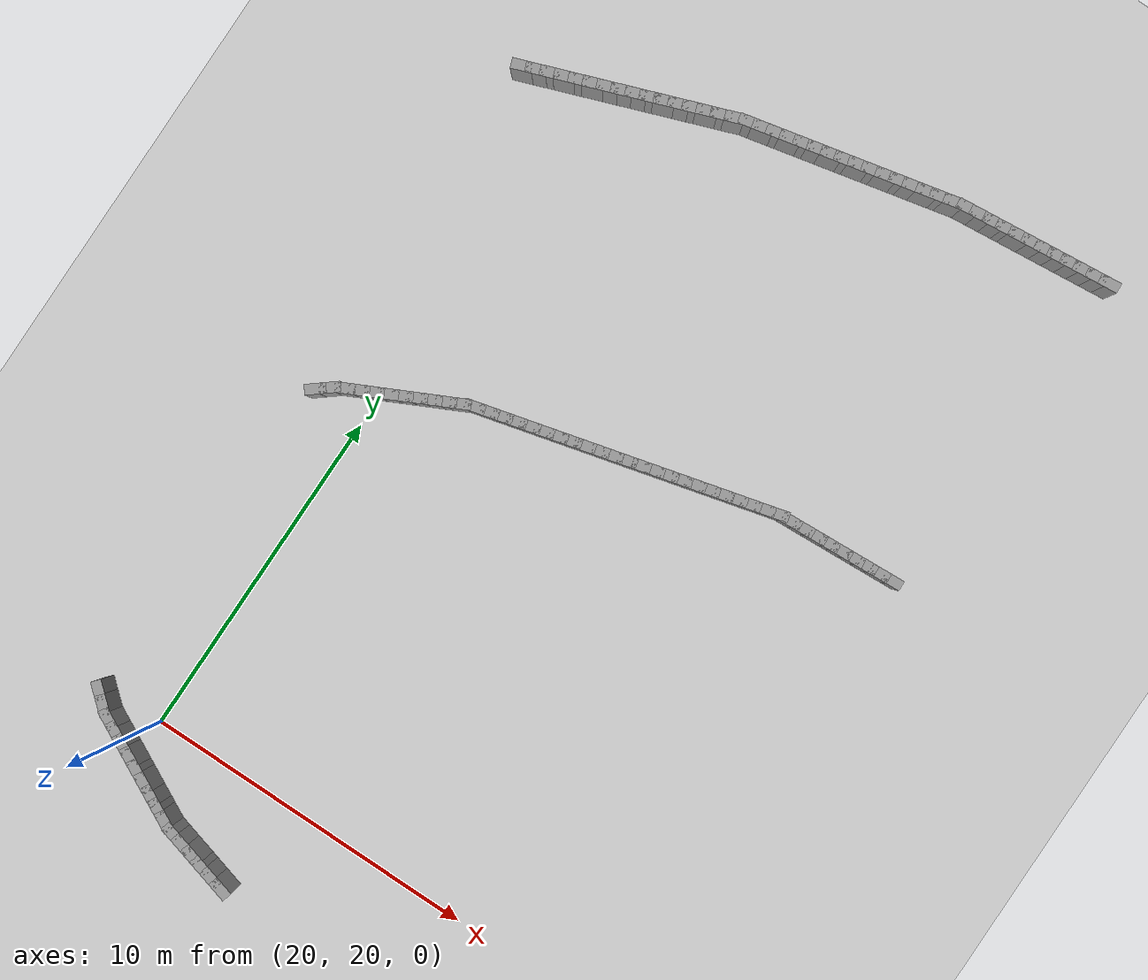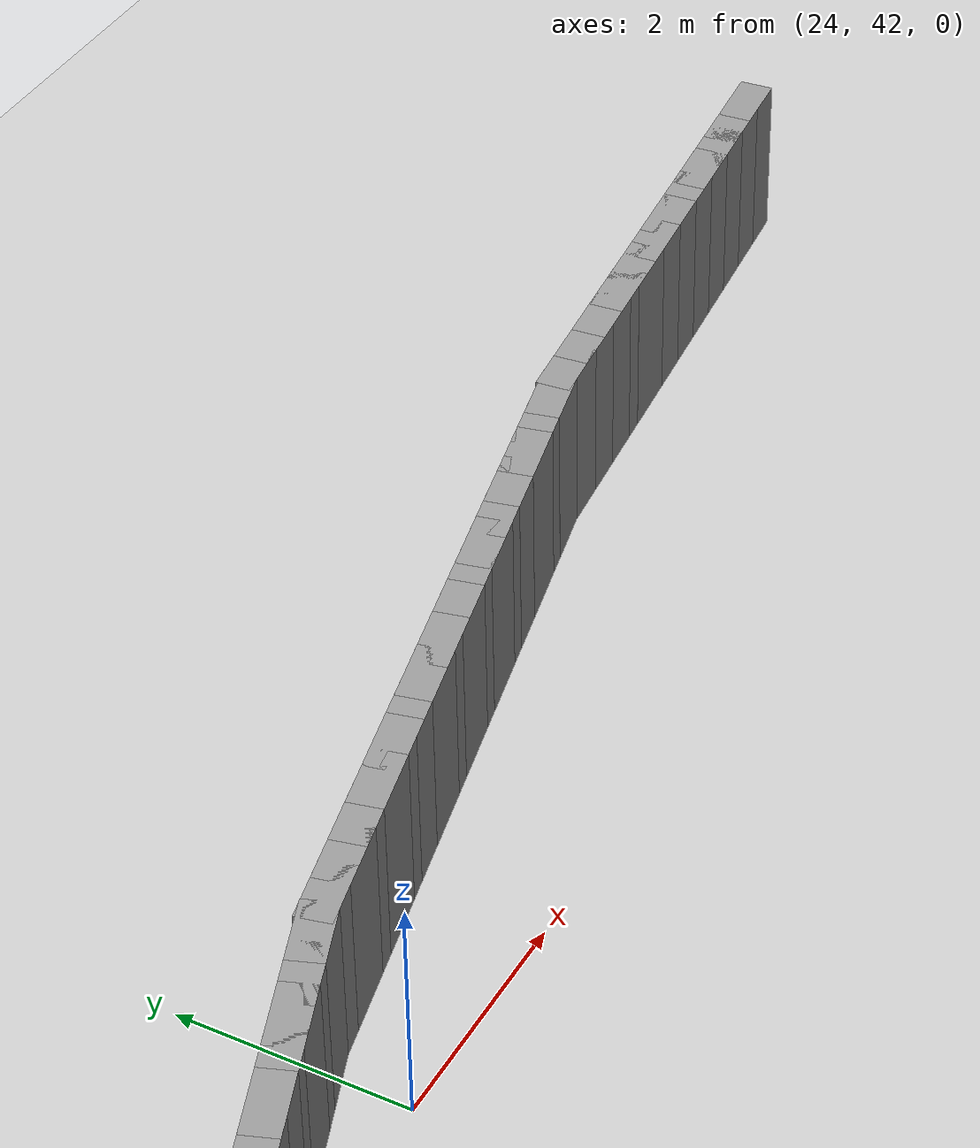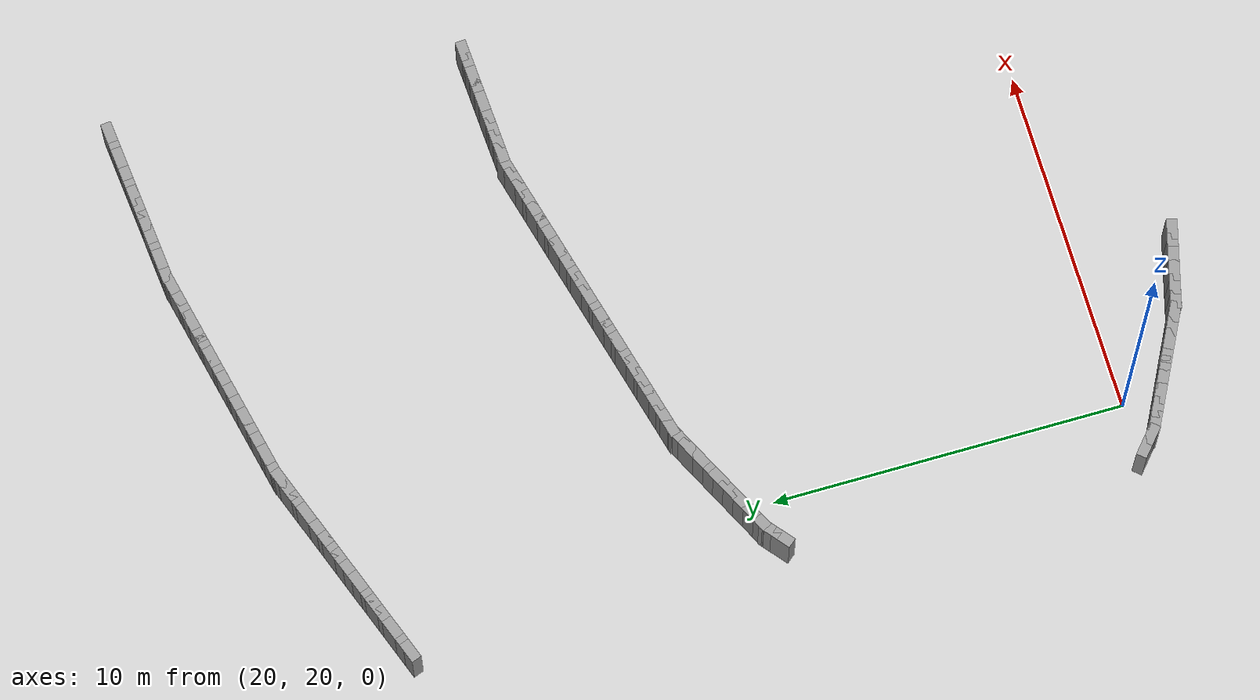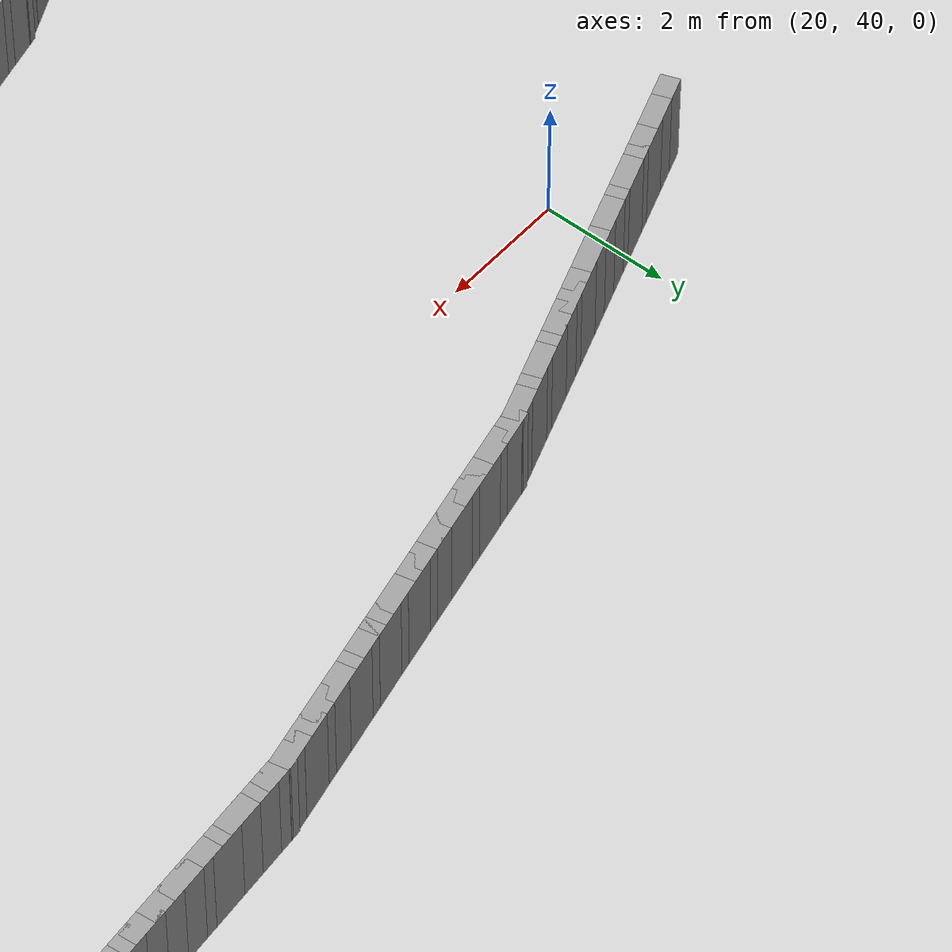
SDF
<sdf version="1.5">
 <world name="img_ellipse_obs">
  <include><uri>model://sun</uri></include>
  <include><uri>model://ground_plane</uri></include>
  <model name="wallL_348">
   <static>true</static>
   <pose>34.980 44.679 0.750 0 0 -3.042</pose>
   <link name="link">
    <collision name="col"><geometry><box><size>0.600 0.300 1.500</size></box></geometry></collision>
    <visual name="vis">
     <geometry><box><size>0.600 0.300 1.500</size></box></geometry>
     <material><ambient>0.6 0.6 0.6 1</ambient><diffuse>0.6 0.6 0.6 1</diffuse></material>
    </visual>
   </link>
  </model>
  <model name="wallL_349">
   <static>true</static>
   <pose>34.582 44.639 0.750 0 0 -3.042</pose>
   <link name="link">
    <collision name="col"><geometry><box><size>0.600 0.300 1.500</size></box></geometry></collision>
    <visual name="vis">
     <geometry><box><size>0.600 0.300 1.500</size></box></geometry>
     <material><ambient>0.6 0.6 0.6 1</ambient><diffuse>0.6 0.6 0.6 1</diffuse></material>
    </visual>
   </link>
  </model>
  <model name="wallL_350">
   <static>true</static>
   <pose>34.184 44.599 0.750 0 0 -3.042</pose>
   <link name="link">
    <collision name="col"><geometry><box><size>0.600 0.300 1.500</size></box></geometry></collision>
    <visual name="vis">
     <geometry><box><size>0.600 0.300 1.500</size></box></geometry>
     <material><ambient>0.6 0.6 0.6 1</ambient><diffuse>0.6 0.6 0.6 1</diffuse></material>
    </visual>
   </link>
  </model>
  <model name="wallL_351">
   <static>true</static>
   <pose>33.786 44.559 0.750 0 0 -3.042</pose>
   <link name="link">
    <collision name="col"><geometry><box><size>0.600 0.300 1.500</size></box></geometry></collision>
    <visual name="vis">
     <geometry><box><size>0.600 0.300 1.500</size></box></geometry>
     <material><ambient>0.6 0.6 0.6 1</ambient><diffuse>0.6 0.6 0.6 1</diffuse></material>
    </visual>
   </link>
  </model>
  <model name="wallL_352">
   <static>true</static>
   <pose>33.388 44.519 0.750 0 0 -3.042</pose>
   <link name="link">
    <collision name="col"><geometry><box><size>0.600 0.300 1.500</size></box></geometry></collision>
    <visual name="vis">
     <geometry><box><size>0.600 0.300 1.500</size></box></geometry>
     <material><ambient>0.6 0.6 0.6 1</ambient><diffuse>0.6 0.6 0.6 1</diffuse></material>
    </visual>
   </link>
  </model>
  <model name="wallL_353">
   <static>true</static>
   <pose>32.990 44.479 0.750 0 0 -3.042</pose>
   <link name="link">
    <collision name="col"><geometry><box><size>0.600 0.300 1.500</size></box></geometry></collision>
    <visual name="vis">
     <geometry><box><size>0.600 0.300 1.500</size></box></geometry>
     <material><ambient>0.6 0.6 0.6 1</ambient><diffuse>0.6 0.6 0.6 1</diffuse></material>
    </visual>
   </link>
  </model>
  <model name="wallL_354">
   <static>true</static>
   <pose>32.592 44.439 0.750 0 0 -3.042</pose>
   <link name="link">
    <collision name="col"><geometry><box><size>0.600 0.300 1.500</size></box></geometry></collision>
    <visual name="vis">
     <geometry><box><size>0.600 0.300 1.500</size></box></geometry>
     <material><ambient>0.6 0.6 0.6 1</ambient><diffuse>0.6 0.6 0.6 1</diffuse></material>
    </visual>
   </link>
  </model>
  <model name="wallL_355">
   <static>true</static>
   <pose>32.194 44.399 0.750 0 0 -3.042</pose>
   <link name="link">
    <collision name="col"><geometry><box><size>0.600 0.300 1.500</size></box></geometry></collision>
    <visual name="vis">
     <geometry><box><size>0.600 0.300 1.500</size></box></geometry>
     <material><ambient>0.6 0.6 0.6 1</ambient><diffuse>0.6 0.6 0.6 1</diffuse></material>
    </visual>
   </link>
  </model>
  <model name="wallL_356">
   <static>true</static>
   <pose>31.796 44.360 0.750 0 0 -3.042</pose>
   <link name="link">
    <collision name="col"><geometry><box><size>0.600 0.300 1.500</size></box></geometry></collision>
    <visual name="vis">
     <geometry><box><size>0.600 0.300 1.500</size></box></geometry>
     <material><ambient>0.6 0.6 0.6 1</ambient><diffuse>0.6 0.6 0.6 1</diffuse></material>
    </visual>
   </link>
  </model>
  <model name="wallL_357">
   <static>true</static>
   <pose>31.398 44.320 0.750 0 0 -3.042</pose>
   <link name="link">
    <collision name="col"><geometry><box><size>0.600 0.300 1.500</size></box></geometry></collision>
    <visual name="vis">
     <geometry><box><size>0.600 0.300 1.500</size></box></geometry>
     <material><ambient>0.6 0.6 0.6 1</ambient><diffuse>0.6 0.6 0.6 1</diffuse></material>
    </visual>
   </link>
  </model>
  <model name="wallL_358">
   <static>true</static>
   <pose>31.000 44.280 0.750 0 0 -3.042</pose>
   <link name="link">
    <collision name="col"><geometry><box><size>0.600 0.300 1.500</size></box></geometry></collision>
    <visual name="vis">
     <geometry><box><size>0.600 0.300 1.500</size></box></geometry>
     <material><ambient>0.6 0.6 0.6 1</ambient><diffuse>0.6 0.6 0.6 1</diffuse></material>
    </visual>
   </link>
  </model>
  <model name="wallL_359">
   <static>true</static>
   <pose>30.602 44.240 0.750 0 0 -3.042</pose>
   <link name="link">
    <collision name="col"><geometry><box><size>0.600 0.300 1.500</size></box></geometry></collision>
    <visual name="vis">
     <geometry><box><size>0.600 0.300 1.500</size></box></geometry>
     <material><ambient>0.6 0.6 0.6 1</ambient><diffuse>0.6 0.6 0.6 1</diffuse></material>
    </visual>
   </link>
  </model>
  <model name="wallL_360">
   <static>true</static>
   <pose>30.209 44.170 0.750 0 0 -2.921</pose>
   <link name="link">
    <collision name="col"><geometry><box><size>0.600 0.300 1.500</size></box></geometry></collision>
    <visual name="vis">
     <geometry><box><size>0.600 0.300 1.500</size></box></geometry>
     <material><ambient>0.6 0.6 0.6 1</ambient><diffuse>0.6 0.6 0.6 1</diffuse></material>
    </visual>
   </link>
  </model>
  <model name="wallL_361">
   <static>true</static>
   <pose>29.818 44.083 0.750 0 0 -2.921</pose>
   <link name="link">
    <collision name="col"><geometry><box><size>0.600 0.300 1.500</size></box></geometry></collision>
    <visual name="vis">
     <geometry><box><size>0.600 0.300 1.500</size></box></geometry>
     <material><ambient>0.6 0.6 0.6 1</ambient><diffuse>0.6 0.6 0.6 1</diffuse></material>
    </visual>
   </link>
  </model>
  <model name="wallL_362">
   <static>true</static>
   <pose>29.428 43.995 0.750 0 0 -2.921</pose>
   <link name="link">
    <collision name="col"><geometry><box><size>0.600 0.300 1.500</size></box></geometry></collision>
    <visual name="vis">
     <geometry><box><size>0.600 0.300 1.500</size></box></geometry>
     <material><ambient>0.6 0.6 0.6 1</ambient><diffuse>0.6 0.6 0.6 1</diffuse></material>
    </visual>
   </link>
  </model>
  <model name="wallL_363">
   <static>true</static>
   <pose>29.038 43.908 0.750 0 0 -2.921</pose>
   <link name="link">
    <collision name="col"><geometry><box><size>0.600 0.300 1.500</size></box></geometry></collision>
    <visual name="vis">
     <geometry><box><size>0.600 0.300 1.500</size></box></geometry>
     <material><ambient>0.6 0.6 0.6 1</ambient><diffuse>0.6 0.6 0.6 1</diffuse></material>
    </visual>
   </link>
  </model>
  <model name="wallL_364">
   <static>true</static>
   <pose>28.647 43.821 0.750 0 0 -2.921</pose>
   <link name="link">
    <collision name="col"><geometry><box><size>0.600 0.300 1.500</size></box></geometry></collision>
    <visual name="vis">
     <geometry><box><size>0.600 0.300 1.500</size></box></geometry>
     <material><ambient>0.6 0.6 0.6 1</ambient><diffuse>0.6 0.6 0.6 1</diffuse></material>
    </visual>
   </link>
  </model>
  <model name="wallL_365">
   <static>true</static>
   <pose>28.257 43.733 0.750 0 0 -2.921</pose>
   <link name="link">
    <collision name="col"><geometry><box><size>0.600 0.300 1.500</size></box></geometry></collision>
    <visual name="vis">
     <geometry><box><size>0.600 0.300 1.500</size></box></geometry>
     <material><ambient>0.6 0.6 0.6 1</ambient><diffuse>0.6 0.6 0.6 1</diffuse></material>
    </visual>
   </link>
  </model>
  <model name="wallL_366">
   <static>true</static>
   <pose>27.867 43.646 0.750 0 0 -2.921</pose>
   <link name="link">
    <collision name="col"><geometry><box><size>0.600 0.300 1.500</size></box></geometry></collision>
    <visual name="vis">
     <geometry><box><size>0.600 0.300 1.500</size></box></geometry>
     <material><ambient>0.6 0.6 0.6 1</ambient><diffuse>0.6 0.6 0.6 1</diffuse></material>
    </visual>
   </link>
  </model>
  <model name="wallL_367">
   <static>true</static>
   <pose>27.476 43.558 0.750 0 0 -2.921</pose>
   <link name="link">
    <collision name="col"><geometry><box><size>0.600 0.300 1.500</size></box></geometry></collision>
    <visual name="vis">
     <geometry><box><size>0.600 0.300 1.500</size></box></geometry>
     <material><ambient>0.6 0.6 0.6 1</ambient><diffuse>0.6 0.6 0.6 1</diffuse></material>
    </visual>
   </link>
  </model>
  <model name="wallL_368">
   <static>true</static>
   <pose>27.086 43.471 0.750 0 0 -2.921</pose>
   <link name="link">
    <collision name="col"><geometry><box><size>0.600 0.300 1.500</size></box></geometry></collision>
    <visual name="vis">
     <geometry><box><size>0.600 0.300 1.500</size></box></geometry>
     <material><ambient>0.6 0.6 0.6 1</ambient><diffuse>0.6 0.6 0.6 1</diffuse></material>
    </visual>
   </link>
  </model>
  <model name="wallL_369">
   <static>true</static>
   <pose>26.696 43.383 0.750 0 0 -2.921</pose>
   <link name="link">
    <collision name="col"><geometry><box><size>0.600 0.300 1.500</size></box></geometry></collision>
    <visual name="vis">
     <geometry><box><size>0.600 0.300 1.500</size></box></geometry>
     <material><ambient>0.6 0.6 0.6 1</ambient><diffuse>0.6 0.6 0.6 1</diffuse></material>
    </visual>
   </link>
  </model>
  <model name="wallL_370">
   <static>true</static>
   <pose>26.305 43.296 0.750 0 0 -2.921</pose>
   <link name="link">
    <collision name="col"><geometry><box><size>0.600 0.300 1.500</size></box></geometry></collision>
    <visual name="vis">
     <geometry><box><size>0.600 0.300 1.500</size></box></geometry>
     <material><ambient>0.6 0.6 0.6 1</ambient><diffuse>0.6 0.6 0.6 1</diffuse></material>
    </visual>
   </link>
  </model>
  <model name="wallL_371">
   <static>true</static>
   <pose>25.915 43.209 0.750 0 0 -2.921</pose>
   <link name="link">
    <collision name="col"><geometry><box><size>0.600 0.300 1.500</size></box></geometry></collision>
    <visual name="vis">
     <geometry><box><size>0.600 0.300 1.500</size></box></geometry>
     <material><ambient>0.6 0.6 0.6 1</ambient><diffuse>0.6 0.6 0.6 1</diffuse></material>
    </visual>
   </link>
  </model>
  <model name="wallL_372">
   <static>true</static>
   <pose>25.525 43.121 0.750 0 0 -2.921</pose>
   <link name="link">
    <collision name="col"><geometry><box><size>0.600 0.300 1.500</size></box></geometry></collision>
    <visual name="vis">
     <geometry><box><size>0.600 0.300 1.500</size></box></geometry>
     <material><ambient>0.6 0.6 0.6 1</ambient><diffuse>0.6 0.6 0.6 1</diffuse></material>
    </visual>
   </link>
  </model>
  <model name="wallL_373">
   <static>true</static>
   <pose>25.134 43.034 0.750 0 0 -2.921</pose>
   <link name="link">
    <collision name="col"><geometry><box><size>0.600 0.300 1.500</size></box></geometry></collision>
    <visual name="vis">
     <geometry><box><size>0.600 0.300 1.500</size></box></geometry>
     <material><ambient>0.6 0.6 0.6 1</ambient><diffuse>0.6 0.6 0.6 1</diffuse></material>
    </visual>
   </link>
  </model>
  <model name="wallL_374">
   <static>true</static>
   <pose>24.744 42.946 0.750 0 0 -2.921</pose>
   <link name="link">
    <collision name="col"><geometry><box><size>0.600 0.300 1.500</size></box></geometry></collision>
    <visual name="vis">
     <geometry><box><size>0.600 0.300 1.500</size></box></geometry>
     <material><ambient>0.6 0.6 0.6 1</ambient><diffuse>0.6 0.6 0.6 1</diffuse></material>
    </visual>
   </link>
  </model>
  <model name="wallL_375">
   <static>true</static>
   <pose>24.354 42.859 0.750 0 0 -2.921</pose>
   <link name="link">
    <collision name="col"><geometry><box><size>0.600 0.300 1.500</size></box></geometry></collision>
    <visual name="vis">
     <geometry><box><size>0.600 0.300 1.500</size></box></geometry>
     <material><ambient>0.6 0.6 0.6 1</ambient><diffuse>0.6 0.6 0.6 1</diffuse></material>
    </visual>
   </link>
  </model>
  <model name="wallL_376">
   <static>true</static>
   <pose>23.973 42.740 0.750 0 0 -2.789</pose>
   <link name="link">
    <collision name="col"><geometry><box><size>0.600 0.300 1.500</size></box></geometry></collision>
    <visual name="vis">
     <geometry><box><size>0.600 0.300 1.500</size></box></geometry>
     <material><ambient>0.6 0.6 0.6 1</ambient><diffuse>0.6 0.6 0.6 1</diffuse></material>
    </visual>
   </link>
  </model>
  <model name="wallL_377">
   <static>true</static>
   <pose>23.597 42.602 0.750 0 0 -2.789</pose>
   <link name="link">
    <collision name="col"><geometry><box><size>0.600 0.300 1.500</size></box></geometry></collision>
    <visual name="vis">
     <geometry><box><size>0.600 0.300 1.500</size></box></geometry>
     <material><ambient>0.6 0.6 0.6 1</ambient><diffuse>0.6 0.6 0.6 1</diffuse></material>
    </visual>
   </link>
  </model>
  <model name="wallL_378">
   <static>true</static>
   <pose>23.222 42.464 0.750 0 0 -2.789</pose>
   <link name="link">
    <collision name="col"><geometry><box><size>0.600 0.300 1.500</size></box></geometry></collision>
    <visual name="vis">
     <geometry><box><size>0.600 0.300 1.500</size></box></geometry>
     <material><ambient>0.6 0.6 0.6 1</ambient><diffuse>0.6 0.6 0.6 1</diffuse></material>
    </visual>
   </link>
  </model>
  <model name="wallL_379">
   <static>true</static>
   <pose>22.846 42.326 0.750 0 0 -2.789</pose>
   <link name="link">
    <collision name="col"><geometry><box><size>0.600 0.300 1.500</size></box></geometry></collision>
    <visual name="vis">
     <geometry><box><size>0.600 0.300 1.500</size></box></geometry>
     <material><ambient>0.6 0.6 0.6 1</ambient><diffuse>0.6 0.6 0.6 1</diffuse></material>
    </visual>
   </link>
  </model>
  <model name="wallL_380">
   <static>true</static>
   <pose>22.471 42.188 0.750 0 0 -2.789</pose>
   <link name="link">
    <collision name="col"><geometry><box><size>0.600 0.300 1.500</size></box></geometry></collision>
    <visual name="vis">
     <geometry><box><size>0.600 0.300 1.500</size></box></geometry>
     <material><ambient>0.6 0.6 0.6 1</ambient><diffuse>0.6 0.6 0.6 1</diffuse></material>
    </visual>
   </link>
  </model>
  <model name="wallL_381">
   <static>true</static>
   <pose>22.096 42.050 0.750 0 0 -2.789</pose>
   <link name="link">
    <collision name="col"><geometry><box><size>0.600 0.300 1.500</size></box></geometry></collision>
    <visual name="vis">
     <geometry><box><size>0.600 0.300 1.500</size></box></geometry>
     <material><ambient>0.6 0.6 0.6 1</ambient><diffuse>0.6 0.6 0.6 1</diffuse></material>
    </visual>
   </link>
  </model>
  <model name="wallL_382">
   <static>true</static>
   <pose>21.720 41.912 0.750 0 0 -2.789</pose>
   <link name="link">
    <collision name="col"><geometry><box><size>0.600 0.300 1.500</size></box></geometry></collision>
    <visual name="vis">
     <geometry><box><size>0.600 0.300 1.500</size></box></geometry>
     <material><ambient>0.6 0.6 0.6 1</ambient><diffuse>0.6 0.6 0.6 1</diffuse></material>
    </visual>
   </link>
  </model>
  <model name="wallL_383">
   <static>true</static>
   <pose>21.345 41.774 0.750 0 0 -2.789</pose>
   <link name="link">
    <collision name="col"><geometry><box><size>0.600 0.300 1.500</size></box></geometry></collision>
    <visual name="vis">
     <geometry><box><size>0.600 0.300 1.500</size></box></geometry>
     <material><ambient>0.6 0.6 0.6 1</ambient><diffuse>0.6 0.6 0.6 1</diffuse></material>
    </visual>
   </link>
  </model>
  <model name="wallL_384">
   <static>true</static>
   <pose>20.969 41.635 0.750 0 0 -2.789</pose>
   <link name="link">
    <collision name="col"><geometry><box><size>0.600 0.300 1.500</size></box></geometry></collision>
    <visual name="vis">
     <geometry><box><size>0.600 0.300 1.500</size></box></geometry>
     <material><ambient>0.6 0.6 0.6 1</ambient><diffuse>0.6 0.6 0.6 1</diffuse></material>
    </visual>
   </link>
  </model>
  <model name="wallL_385">
   <static>true</static>
   <pose>20.594 41.497 0.750 0 0 -2.789</pose>
   <link name="link">
    <collision name="col"><geometry><box><size>0.600 0.300 1.500</size></box></geometry></collision>
    <visual name="vis">
     <geometry><box><size>0.600 0.300 1.500</size></box></geometry>
     <material><ambient>0.6 0.6 0.6 1</ambient><diffuse>0.6 0.6 0.6 1</diffuse></material>
    </visual>
   </link>
  </model>
  <model name="wallL_386">
   <static>true</static>
   <pose>20.219 41.359 0.750 0 0 -2.789</pose>
   <link name="link">
    <collision name="col"><geometry><box><size>0.600 0.300 1.500</size></box></geometry></collision>
    <visual name="vis">
     <geometry><box><size>0.600 0.300 1.500</size></box></geometry>
     <material><ambient>0.6 0.6 0.6 1</ambient><diffuse>0.6 0.6 0.6 1</diffuse></material>
    </visual>
   </link>
  </model>
  <model name="wallL_387">
   <static>true</static>
   <pose>19.843 41.221 0.750 0 0 -2.789</pose>
   <link name="link">
    <collision name="col"><geometry><box><size>0.600 0.300 1.500</size></box></geometry></collision>
    <visual name="vis">
     <geometry><box><size>0.600 0.300 1.500</size></box></geometry>
     <material><ambient>0.6 0.6 0.6 1</ambient><diffuse>0.6 0.6 0.6 1</diffuse></material>
    </visual>
   </link>
  </model>
  <model name="wallL_388">
   <static>true</static>
   <pose>19.468 41.083 0.750 0 0 -2.789</pose>
   <link name="link">
    <collision name="col"><geometry><box><size>0.600 0.300 1.500</size></box></geometry></collision>
    <visual name="vis">
     <geometry><box><size>0.600 0.300 1.500</size></box></geometry>
     <material><ambient>0.6 0.6 0.6 1</ambient><diffuse>0.6 0.6 0.6 1</diffuse></material>
    </visual>
   </link>
  </model>
  <model name="wallL_389">
   <static>true</static>
   <pose>19.092 40.945 0.750 0 0 -2.789</pose>
   <link name="link">
    <collision name="col"><geometry><box><size>0.600 0.300 1.500</size></box></geometry></collision>
    <visual name="vis">
     <geometry><box><size>0.600 0.300 1.500</size></box></geometry>
     <material><ambient>0.6 0.6 0.6 1</ambient><diffuse>0.6 0.6 0.6 1</diffuse></material>
    </visual>
   </link>
  </model>
  <model name="wallL_390">
   <static>true</static>
   <pose>18.717 40.807 0.750 0 0 -2.789</pose>
   <link name="link">
    <collision name="col"><geometry><box><size>0.600 0.300 1.500</size></box></geometry></collision>
    <visual name="vis">
     <geometry><box><size>0.600 0.300 1.500</size></box></geometry>
     <material><ambient>0.6 0.6 0.6 1</ambient><diffuse>0.6 0.6 0.6 1</diffuse></material>
    </visual>
   </link>
  </model>
  <model name="wallL_391">
   <static>true</static>
   <pose>18.342 40.669 0.750 0 0 -2.789</pose>
   <link name="link">
    <collision name="col"><geometry><box><size>0.600 0.300 1.500</size></box></geometry></collision>
    <visual name="vis">
     <geometry><box><size>0.600 0.300 1.500</size></box></geometry>
     <material><ambient>0.6 0.6 0.6 1</ambient><diffuse>0.6 0.6 0.6 1</diffuse></material>
    </visual>
   </link>
  </model>
  <model name="wallR_16">
   <static>true</static>
   <pose>18.582 30.190 0.750 0 0 0.683</pose>
   <link name="link">
    <collision name="col"><geometry><box><size>0.600 0.300 1.500</size></box></geometry></collision>
    <visual name="vis">
     <geometry><box><size>0.600 0.300 1.500</size></box></geometry>
     <material><ambient>0.6 0.6 0.6 1</ambient><diffuse>0.6 0.6 0.6 1</diffuse></material>
    </visual>
   </link>
  </model>
  <model name="wallR_17">
   <static>true</static>
   <pose>18.893 30.442 0.750 0 0 0.683</pose>
   <link name="link">
    <collision name="col"><geometry><box><size>0.600 0.300 1.500</size></box></geometry></collision>
    <visual name="vis">
     <geometry><box><size>0.600 0.300 1.500</size></box></geometry>
     <material><ambient>0.6 0.6 0.6 1</ambient><diffuse>0.6 0.6 0.6 1</diffuse></material>
    </visual>
   </link>
  </model>
  <model name="wallR_18">
   <static>true</static>
   <pose>19.231 30.651 0.750 0 0 0.458</pose>
   <link name="link">
    <collision name="col"><geometry><box><size>0.600 0.300 1.500</size></box></geometry></collision>
    <visual name="vis">
     <geometry><box><size>0.600 0.300 1.500</size></box></geometry>
     <material><ambient>0.6 0.6 0.6 1</ambient><diffuse>0.6 0.6 0.6 1</diffuse></material>
    </visual>
   </link>
  </model>
  <model name="wallR_19">
   <static>true</static>
   <pose>19.590 30.828 0.750 0 0 0.458</pose>
   <link name="link">
    <collision name="col"><geometry><box><size>0.600 0.300 1.500</size></box></geometry></collision>
    <visual name="vis">
     <geometry><box><size>0.600 0.300 1.500</size></box></geometry>
     <material><ambient>0.6 0.6 0.6 1</ambient><diffuse>0.6 0.6 0.6 1</diffuse></material>
    </visual>
   </link>
  </model>
  <model name="wallR_20">
   <static>true</static>
   <pose>19.948 31.005 0.750 0 0 0.458</pose>
   <link name="link">
    <collision name="col"><geometry><box><size>0.600 0.300 1.500</size></box></geometry></collision>
    <visual name="vis">
     <geometry><box><size>0.600 0.300 1.500</size></box></geometry>
     <material><ambient>0.6 0.6 0.6 1</ambient><diffuse>0.6 0.6 0.6 1</diffuse></material>
    </visual>
   </link>
  </model>
  <model name="wallR_21">
   <static>true</static>
   <pose>20.307 31.182 0.750 0 0 0.458</pose>
   <link name="link">
    <collision name="col"><geometry><box><size>0.600 0.300 1.500</size></box></geometry></collision>
    <visual name="vis">
     <geometry><box><size>0.600 0.300 1.500</size></box></geometry>
     <material><ambient>0.6 0.6 0.6 1</ambient><diffuse>0.6 0.6 0.6 1</diffuse></material>
    </visual>
   </link>
  </model>
  <model name="wallR_22">
   <static>true</static>
   <pose>20.666 31.359 0.750 0 0 0.458</pose>
   <link name="link">
    <collision name="col"><geometry><box><size>0.600 0.300 1.500</size></box></geometry></collision>
    <visual name="vis">
     <geometry><box><size>0.600 0.300 1.500</size></box></geometry>
     <material><ambient>0.6 0.6 0.6 1</ambient><diffuse>0.6 0.6 0.6 1</diffuse></material>
    </visual>
   </link>
  </model>
  <model name="wallR_23">
   <static>true</static>
   <pose>21.024 31.536 0.750 0 0 0.458</pose>
   <link name="link">
    <collision name="col"><geometry><box><size>0.600 0.300 1.500</size></box></geometry></collision>
    <visual name="vis">
     <geometry><box><size>0.600 0.300 1.500</size></box></geometry>
     <material><ambient>0.6 0.6 0.6 1</ambient><diffuse>0.6 0.6 0.6 1</diffuse></material>
    </visual>
   </link>
  </model>
  <model name="wallR_24">
   <static>true</static>
   <pose>21.383 31.713 0.750 0 0 0.458</pose>
   <link name="link">
    <collision name="col"><geometry><box><size>0.600 0.300 1.500</size></box></geometry></collision>
    <visual name="vis">
     <geometry><box><size>0.600 0.300 1.500</size></box></geometry>
     <material><ambient>0.6 0.6 0.6 1</ambient><diffuse>0.6 0.6 0.6 1</diffuse></material>
    </visual>
   </link>
  </model>
  <model name="wallR_25">
   <static>true</static>
   <pose>21.742 31.890 0.750 0 0 0.458</pose>
   <link name="link">
    <collision name="col"><geometry><box><size>0.600 0.300 1.500</size></box></geometry></collision>
    <visual name="vis">
     <geometry><box><size>0.600 0.300 1.500</size></box></geometry>
     <material><ambient>0.6 0.6 0.6 1</ambient><diffuse>0.6 0.6 0.6 1</diffuse></material>
    </visual>
   </link>
  </model>
  <model name="wallR_26">
   <static>true</static>
   <pose>22.101 32.066 0.750 0 0 0.458</pose>
   <link name="link">
    <collision name="col"><geometry><box><size>0.600 0.300 1.500</size></box></geometry></collision>
    <visual name="vis">
     <geometry><box><size>0.600 0.300 1.500</size></box></geometry>
     <material><ambient>0.6 0.6 0.6 1</ambient><diffuse>0.6 0.6 0.6 1</diffuse></material>
    </visual>
   </link>
  </model>
  <model name="wallR_27">
   <static>true</static>
   <pose>22.470 32.214 0.750 0 0 0.252</pose>
   <link name="link">
    <collision name="col"><geometry><box><size>0.600 0.300 1.500</size></box></geometry></collision>
    <visual name="vis">
     <geometry><box><size>0.600 0.300 1.500</size></box></geometry>
     <material><ambient>0.6 0.6 0.6 1</ambient><diffuse>0.6 0.6 0.6 1</diffuse></material>
    </visual>
   </link>
  </model>
  <model name="wallR_28">
   <static>true</static>
   <pose>22.858 32.313 0.750 0 0 0.252</pose>
   <link name="link">
    <collision name="col"><geometry><box><size>0.600 0.300 1.500</size></box></geometry></collision>
    <visual name="vis">
     <geometry><box><size>0.600 0.300 1.500</size></box></geometry>
     <material><ambient>0.6 0.6 0.6 1</ambient><diffuse>0.6 0.6 0.6 1</diffuse></material>
    </visual>
   </link>
  </model>
  <model name="wallR_29">
   <static>true</static>
   <pose>23.245 32.413 0.750 0 0 0.252</pose>
   <link name="link">
    <collision name="col"><geometry><box><size>0.600 0.300 1.500</size></box></geometry></collision>
    <visual name="vis">
     <geometry><box><size>0.600 0.300 1.500</size></box></geometry>
     <material><ambient>0.6 0.6 0.6 1</ambient><diffuse>0.6 0.6 0.6 1</diffuse></material>
    </visual>
   </link>
  </model>
  <model name="wallR_30">
   <static>true</static>
   <pose>23.633 32.513 0.750 0 0 0.252</pose>
   <link name="link">
    <collision name="col"><geometry><box><size>0.600 0.300 1.500</size></box></geometry></collision>
    <visual name="vis">
     <geometry><box><size>0.600 0.300 1.500</size></box></geometry>
     <material><ambient>0.6 0.6 0.6 1</ambient><diffuse>0.6 0.6 0.6 1</diffuse></material>
    </visual>
   </link>
  </model>
  <model name="wallR_31">
   <static>true</static>
   <pose>24.020 32.612 0.750 0 0 0.252</pose>
   <link name="link">
    <collision name="col"><geometry><box><size>0.600 0.300 1.500</size></box></geometry></collision>
    <visual name="vis">
     <geometry><box><size>0.600 0.300 1.500</size></box></geometry>
     <material><ambient>0.6 0.6 0.6 1</ambient><diffuse>0.6 0.6 0.6 1</diffuse></material>
    </visual>
   </link>
  </model>
  <model name="wallR_32">
   <static>true</static>
   <pose>24.407 32.712 0.750 0 0 0.252</pose>
   <link name="link">
    <collision name="col"><geometry><box><size>0.600 0.300 1.500</size></box></geometry></collision>
    <visual name="vis">
     <geometry><box><size>0.600 0.300 1.500</size></box></geometry>
     <material><ambient>0.6 0.6 0.6 1</ambient><diffuse>0.6 0.6 0.6 1</diffuse></material>
    </visual>
   </link>
  </model>
  <model name="wallR_33">
   <static>true</static>
   <pose>24.795 32.812 0.750 0 0 0.252</pose>
   <link name="link">
    <collision name="col"><geometry><box><size>0.600 0.300 1.500</size></box></geometry></collision>
    <visual name="vis">
     <geometry><box><size>0.600 0.300 1.500</size></box></geometry>
     <material><ambient>0.6 0.6 0.6 1</ambient><diffuse>0.6 0.6 0.6 1</diffuse></material>
    </visual>
   </link>
  </model>
  <model name="wallR_34">
   <static>true</static>
   <pose>25.182 32.911 0.750 0 0 0.252</pose>
   <link name="link">
    <collision name="col"><geometry><box><size>0.600 0.300 1.500</size></box></geometry></collision>
    <visual name="vis">
     <geometry><box><size>0.600 0.300 1.500</size></box></geometry>
     <material><ambient>0.6 0.6 0.6 1</ambient><diffuse>0.6 0.6 0.6 1</diffuse></material>
    </visual>
   </link>
  </model>
  <model name="wallR_35">
   <static>true</static>
   <pose>25.570 33.011 0.750 0 0 0.252</pose>
   <link name="link">
    <collision name="col"><geometry><box><size>0.600 0.300 1.500</size></box></geometry></collision>
    <visual name="vis">
     <geometry><box><size>0.600 0.300 1.500</size></box></geometry>
     <material><ambient>0.6 0.6 0.6 1</ambient><diffuse>0.6 0.6 0.6 1</diffuse></material>
    </visual>
   </link>
  </model>
  <model name="wallR_36">
   <static>true</static>
   <pose>25.957 33.111 0.750 0 0 0.252</pose>
   <link name="link">
    <collision name="col"><geometry><box><size>0.600 0.300 1.500</size></box></geometry></collision>
    <visual name="vis">
     <geometry><box><size>0.600 0.300 1.500</size></box></geometry>
     <material><ambient>0.6 0.6 0.6 1</ambient><diffuse>0.6 0.6 0.6 1</diffuse></material>
    </visual>
   </link>
  </model>
  <model name="wallR_37">
   <static>true</static>
   <pose>26.344 33.210 0.750 0 0 0.252</pose>
   <link name="link">
    <collision name="col"><geometry><box><size>0.600 0.300 1.500</size></box></geometry></collision>
    <visual name="vis">
     <geometry><box><size>0.600 0.300 1.500</size></box></geometry>
     <material><ambient>0.6 0.6 0.6 1</ambient><diffuse>0.6 0.6 0.6 1</diffuse></material>
    </visual>
   </link>
  </model>
  <model name="wallR_38">
   <static>true</static>
   <pose>26.732 33.310 0.750 0 0 0.252</pose>
   <link name="link">
    <collision name="col"><geometry><box><size>0.600 0.300 1.500</size></box></geometry></collision>
    <visual name="vis">
     <geometry><box><size>0.600 0.300 1.500</size></box></geometry>
     <material><ambient>0.6 0.6 0.6 1</ambient><diffuse>0.6 0.6 0.6 1</diffuse></material>
    </visual>
   </link>
  </model>
  <model name="wallR_39">
   <static>true</static>
   <pose>27.119 33.410 0.750 0 0 0.252</pose>
   <link name="link">
    <collision name="col"><geometry><box><size>0.600 0.300 1.500</size></box></geometry></collision>
    <visual name="vis">
     <geometry><box><size>0.600 0.300 1.500</size></box></geometry>
     <material><ambient>0.6 0.6 0.6 1</ambient><diffuse>0.6 0.6 0.6 1</diffuse></material>
    </visual>
   </link>
  </model>
  <model name="wallR_40">
   <static>true</static>
   <pose>27.506 33.509 0.750 0 0 0.252</pose>
   <link name="link">
    <collision name="col"><geometry><box><size>0.600 0.300 1.500</size></box></geometry></collision>
    <visual name="vis">
     <geometry><box><size>0.600 0.300 1.500</size></box></geometry>
     <material><ambient>0.6 0.6 0.6 1</ambient><diffuse>0.6 0.6 0.6 1</diffuse></material>
    </visual>
   </link>
  </model>
  <model name="wallR_41">
   <static>true</static>
   <pose>27.894 33.609 0.750 0 0 0.252</pose>
   <link name="link">
    <collision name="col"><geometry><box><size>0.600 0.300 1.500</size></box></geometry></collision>
    <visual name="vis">
     <geometry><box><size>0.600 0.300 1.500</size></box></geometry>
     <material><ambient>0.6 0.6 0.6 1</ambient><diffuse>0.6 0.6 0.6 1</diffuse></material>
    </visual>
   </link>
  </model>
  <model name="wallR_42">
   <static>true</static>
   <pose>28.281 33.709 0.750 0 0 0.252</pose>
   <link name="link">
    <collision name="col"><geometry><box><size>0.600 0.300 1.500</size></box></geometry></collision>
    <visual name="vis">
     <geometry><box><size>0.600 0.300 1.500</size></box></geometry>
     <material><ambient>0.6 0.6 0.6 1</ambient><diffuse>0.6 0.6 0.6 1</diffuse></material>
    </visual>
   </link>
  </model>
  <model name="wallR_43">
   <static>true</static>
   <pose>28.669 33.808 0.750 0 0 0.252</pose>
   <link name="link">
    <collision name="col"><geometry><box><size>0.600 0.300 1.500</size></box></geometry></collision>
    <visual name="vis">
     <geometry><box><size>0.600 0.300 1.500</size></box></geometry>
     <material><ambient>0.6 0.6 0.6 1</ambient><diffuse>0.6 0.6 0.6 1</diffuse></material>
    </visual>
   </link>
  </model>
  <model name="wallR_44">
   <static>true</static>
   <pose>29.056 33.908 0.750 0 0 0.252</pose>
   <link name="link">
    <collision name="col"><geometry><box><size>0.600 0.300 1.500</size></box></geometry></collision>
    <visual name="vis">
     <geometry><box><size>0.600 0.300 1.500</size></box></geometry>
     <material><ambient>0.6 0.6 0.6 1</ambient><diffuse>0.6 0.6 0.6 1</diffuse></material>
    </visual>
   </link>
  </model>
  <model name="wallR_45">
   <static>true</static>
   <pose>29.443 34.008 0.750 0 0 0.252</pose>
   <link name="link">
    <collision name="col"><geometry><box><size>0.600 0.300 1.500</size></box></geometry></collision>
    <visual name="vis">
     <geometry><box><size>0.600 0.300 1.500</size></box></geometry>
     <material><ambient>0.6 0.6 0.6 1</ambient><diffuse>0.6 0.6 0.6 1</diffuse></material>
    </visual>
   </link>
  </model>
  <model name="wallR_46">
   <static>true</static>
   <pose>29.831 34.107 0.750 0 0 0.252</pose>
   <link name="link">
    <collision name="col"><geometry><box><size>0.600 0.300 1.500</size></box></geometry></collision>
    <visual name="vis">
     <geometry><box><size>0.600 0.300 1.500</size></box></geometry>
     <material><ambient>0.6 0.6 0.6 1</ambient><diffuse>0.6 0.6 0.6 1</diffuse></material>
    </visual>
   </link>
  </model>
  <model name="wallR_47">
   <static>true</static>
   <pose>30.218 34.207 0.750 0 0 0.252</pose>
   <link name="link">
    <collision name="col"><geometry><box><size>0.600 0.300 1.500</size></box></geometry></collision>
    <visual name="vis">
     <geometry><box><size>0.600 0.300 1.500</size></box></geometry>
     <material><ambient>0.6 0.6 0.6 1</ambient><diffuse>0.6 0.6 0.6 1</diffuse></material>
    </visual>
   </link>
  </model>
  <model name="wallR_48">
   <static>true</static>
   <pose>30.606 34.307 0.750 0 0 0.252</pose>
   <link name="link">
    <collision name="col"><geometry><box><size>0.600 0.300 1.500</size></box></geometry></collision>
    <visual name="vis">
     <geometry><box><size>0.600 0.300 1.500</size></box></geometry>
     <material><ambient>0.6 0.6 0.6 1</ambient><diffuse>0.6 0.6 0.6 1</diffuse></material>
    </visual>
   </link>
  </model>
  <model name="wallR_49">
   <static>true</static>
   <pose>30.993 34.406 0.750 0 0 0.252</pose>
   <link name="link">
    <collision name="col"><geometry><box><size>0.600 0.300 1.500</size></box></geometry></collision>
    <visual name="vis">
     <geometry><box><size>0.600 0.300 1.500</size></box></geometry>
     <material><ambient>0.6 0.6 0.6 1</ambient><diffuse>0.6 0.6 0.6 1</diffuse></material>
    </visual>
   </link>
  </model>
  <model name="wallR_50">
   <static>true</static>
   <pose>31.390 34.444 0.750 0 0 0.058</pose>
   <link name="link">
    <collision name="col"><geometry><box><size>0.600 0.300 1.500</size></box></geometry></collision>
    <visual name="vis">
     <geometry><box><size>0.600 0.300 1.500</size></box></geometry>
     <material><ambient>0.6 0.6 0.6 1</ambient><diffuse>0.6 0.6 0.6 1</diffuse></material>
    </visual>
   </link>
  </model>
  <model name="wallR_51">
   <static>true</static>
   <pose>31.789 34.467 0.750 0 0 0.058</pose>
   <link name="link">
    <collision name="col"><geometry><box><size>0.600 0.300 1.500</size></box></geometry></collision>
    <visual name="vis">
     <geometry><box><size>0.600 0.300 1.500</size></box></geometry>
     <material><ambient>0.6 0.6 0.6 1</ambient><diffuse>0.6 0.6 0.6 1</diffuse></material>
    </visual>
   </link>
  </model>
  <model name="wallR_52">
   <static>true</static>
   <pose>32.189 34.490 0.750 0 0 0.058</pose>
   <link name="link">
    <collision name="col"><geometry><box><size>0.600 0.300 1.500</size></box></geometry></collision>
    <visual name="vis">
     <geometry><box><size>0.600 0.300 1.500</size></box></geometry>
     <material><ambient>0.6 0.6 0.6 1</ambient><diffuse>0.6 0.6 0.6 1</diffuse></material>
    </visual>
   </link>
  </model>
  <model name="wallR_53">
   <static>true</static>
   <pose>32.588 34.514 0.750 0 0 0.058</pose>
   <link name="link">
    <collision name="col"><geometry><box><size>0.600 0.300 1.500</size></box></geometry></collision>
    <visual name="vis">
     <geometry><box><size>0.600 0.300 1.500</size></box></geometry>
     <material><ambient>0.6 0.6 0.6 1</ambient><diffuse>0.6 0.6 0.6 1</diffuse></material>
    </visual>
   </link>
  </model>
  <model name="wallR_54">
   <static>true</static>
   <pose>32.987 34.537 0.750 0 0 0.058</pose>
   <link name="link">
    <collision name="col"><geometry><box><size>0.600 0.300 1.500</size></box></geometry></collision>
    <visual name="vis">
     <geometry><box><size>0.600 0.300 1.500</size></box></geometry>
     <material><ambient>0.6 0.6 0.6 1</ambient><diffuse>0.6 0.6 0.6 1</diffuse></material>
    </visual>
   </link>
  </model>
  <model name="wallR_55">
   <static>true</static>
   <pose>33.387 34.560 0.750 0 0 0.058</pose>
   <link name="link">
    <collision name="col"><geometry><box><size>0.600 0.300 1.500</size></box></geometry></collision>
    <visual name="vis">
     <geometry><box><size>0.600 0.300 1.500</size></box></geometry>
     <material><ambient>0.6 0.6 0.6 1</ambient><diffuse>0.6 0.6 0.6 1</diffuse></material>
    </visual>
   </link>
  </model>
  <model name="wallR_56">
   <static>true</static>
   <pose>33.786 34.583 0.750 0 0 0.058</pose>
   <link name="link">
    <collision name="col"><geometry><box><size>0.600 0.300 1.500</size></box></geometry></collision>
    <visual name="vis">
     <geometry><box><size>0.600 0.300 1.500</size></box></geometry>
     <material><ambient>0.6 0.6 0.6 1</ambient><diffuse>0.6 0.6 0.6 1</diffuse></material>
    </visual>
   </link>
  </model>
  <model name="wallR_57">
   <static>true</static>
   <pose>34.185 34.606 0.750 0 0 0.058</pose>
   <link name="link">
    <collision name="col"><geometry><box><size>0.600 0.300 1.500</size></box></geometry></collision>
    <visual name="vis">
     <geometry><box><size>0.600 0.300 1.500</size></box></geometry>
     <material><ambient>0.6 0.6 0.6 1</ambient><diffuse>0.6 0.6 0.6 1</diffuse></material>
    </visual>
   </link>
  </model>
  <model name="wallR_58">
   <static>true</static>
   <pose>34.585 34.630 0.750 0 0 0.058</pose>
   <link name="link">
    <collision name="col"><geometry><box><size>0.600 0.300 1.500</size></box></geometry></collision>
    <visual name="vis">
     <geometry><box><size>0.600 0.300 1.500</size></box></geometry>
     <material><ambient>0.6 0.6 0.6 1</ambient><diffuse>0.6 0.6 0.6 1</diffuse></material>
    </visual>
   </link>
  </model>
  <model name="wallR_256">
   <static>true</static>
   <pose>24.049 17.396 0.750 0 0 2.873</pose>
   <link name="link">
    <collision name="col"><geometry><box><size>0.600 0.300 1.500</size></box></geometry></collision>
    <visual name="vis">
     <geometry><box><size>0.600 0.300 1.500</size></box></geometry>
     <material><ambient>0.6 0.6 0.6 1</ambient><diffuse>0.6 0.6 0.6 1</diffuse></material>
    </visual>
   </link>
  </model>
  <model name="wallR_257">
   <static>true</static>
   <pose>23.663 17.502 0.750 0 0 2.873</pose>
   <link name="link">
    <collision name="col"><geometry><box><size>0.600 0.300 1.500</size></box></geometry></collision>
    <visual name="vis">
     <geometry><box><size>0.600 0.300 1.500</size></box></geometry>
     <material><ambient>0.6 0.6 0.6 1</ambient><diffuse>0.6 0.6 0.6 1</diffuse></material>
    </visual>
   </link>
  </model>
  <model name="wallR_258">
   <static>true</static>
   <pose>23.277 17.608 0.750 0 0 2.873</pose>
   <link name="link">
    <collision name="col"><geometry><box><size>0.600 0.300 1.500</size></box></geometry></collision>
    <visual name="vis">
     <geometry><box><size>0.600 0.300 1.500</size></box></geometry>
     <material><ambient>0.6 0.6 0.6 1</ambient><diffuse>0.6 0.6 0.6 1</diffuse></material>
    </visual>
   </link>
  </model>
  <model name="wallR_259">
   <static>true</static>
   <pose>22.892 17.714 0.750 0 0 2.873</pose>
   <link name="link">
    <collision name="col"><geometry><box><size>0.600 0.300 1.500</size></box></geometry></collision>
    <visual name="vis">
     <geometry><box><size>0.600 0.300 1.500</size></box></geometry>
     <material><ambient>0.6 0.6 0.6 1</ambient><diffuse>0.6 0.6 0.6 1</diffuse></material>
    </visual>
   </link>
  </model>
  <model name="wallR_260">
   <static>true</static>
   <pose>22.506 17.820 0.750 0 0 2.873</pose>
   <link name="link">
    <collision name="col"><geometry><box><size>0.600 0.300 1.500</size></box></geometry></collision>
    <visual name="vis">
     <geometry><box><size>0.600 0.300 1.500</size></box></geometry>
     <material><ambient>0.6 0.6 0.6 1</ambient><diffuse>0.6 0.6 0.6 1</diffuse></material>
    </visual>
   </link>
  </model>
  <model name="wallR_261">
   <static>true</static>
   <pose>22.120 17.926 0.750 0 0 2.873</pose>
   <link name="link">
    <collision name="col"><geometry><box><size>0.600 0.300 1.500</size></box></geometry></collision>
    <visual name="vis">
     <geometry><box><size>0.600 0.300 1.500</size></box></geometry>
     <material><ambient>0.6 0.6 0.6 1</ambient><diffuse>0.6 0.6 0.6 1</diffuse></material>
    </visual>
   </link>
  </model>
  <model name="wallR_262">
   <static>true</static>
   <pose>21.751 18.074 0.750 0 0 2.665</pose>
   <link name="link">
    <collision name="col"><geometry><box><size>0.600 0.300 1.500</size></box></geometry></collision>
    <visual name="vis">
     <geometry><box><size>0.600 0.300 1.500</size></box></geometry>
     <material><ambient>0.6 0.6 0.6 1</ambient><diffuse>0.6 0.6 0.6 1</diffuse></material>
    </visual>
   </link>
  </model>
  <model name="wallR_263">
   <static>true</static>
   <pose>21.396 18.257 0.750 0 0 2.665</pose>
   <link name="link">
    <collision name="col"><geometry><box><size>0.600 0.300 1.500</size></box></geometry></collision>
    <visual name="vis">
     <geometry><box><size>0.600 0.300 1.500</size></box></geometry>
     <material><ambient>0.6 0.6 0.6 1</ambient><diffuse>0.6 0.6 0.6 1</diffuse></material>
    </visual>
   </link>
  </model>
  <model name="wallR_264">
   <static>true</static>
   <pose>21.040 18.441 0.750 0 0 2.665</pose>
   <link name="link">
    <collision name="col"><geometry><box><size>0.600 0.300 1.500</size></box></geometry></collision>
    <visual name="vis">
     <geometry><box><size>0.600 0.300 1.500</size></box></geometry>
     <material><ambient>0.6 0.6 0.6 1</ambient><diffuse>0.6 0.6 0.6 1</diffuse></material>
    </visual>
   </link>
  </model>
  <model name="wallR_265">
   <static>true</static>
   <pose>20.685 18.625 0.750 0 0 2.665</pose>
   <link name="link">
    <collision name="col"><geometry><box><size>0.600 0.300 1.500</size></box></geometry></collision>
    <visual name="vis">
     <geometry><box><size>0.600 0.300 1.500</size></box></geometry>
     <material><ambient>0.6 0.6 0.6 1</ambient><diffuse>0.6 0.6 0.6 1</diffuse></material>
    </visual>
   </link>
  </model>
  <model name="wallR_266">
   <static>true</static>
   <pose>20.330 18.808 0.750 0 0 2.665</pose>
   <link name="link">
    <collision name="col"><geometry><box><size>0.600 0.300 1.500</size></box></geometry></collision>
    <visual name="vis">
     <geometry><box><size>0.600 0.300 1.500</size></box></geometry>
     <material><ambient>0.6 0.6 0.6 1</ambient><diffuse>0.6 0.6 0.6 1</diffuse></material>
    </visual>
   </link>
  </model>
  <model name="wallR_267">
   <static>true</static>
   <pose>19.974 18.992 0.750 0 0 2.665</pose>
   <link name="link">
    <collision name="col"><geometry><box><size>0.600 0.300 1.500</size></box></geometry></collision>
    <visual name="vis">
     <geometry><box><size>0.600 0.300 1.500</size></box></geometry>
     <material><ambient>0.6 0.6 0.6 1</ambient><diffuse>0.6 0.6 0.6 1</diffuse></material>
    </visual>
   </link>
  </model>
  <model name="wallR_268">
   <static>true</static>
   <pose>19.619 19.175 0.750 0 0 2.665</pose>
   <link name="link">
    <collision name="col"><geometry><box><size>0.600 0.300 1.500</size></box></geometry></collision>
    <visual name="vis">
     <geometry><box><size>0.600 0.300 1.500</size></box></geometry>
     <material><ambient>0.6 0.6 0.6 1</ambient><diffuse>0.6 0.6 0.6 1</diffuse></material>
    </visual>
   </link>
  </model>
  <model name="wallR_269">
   <static>true</static>
   <pose>19.264 19.359 0.750 0 0 2.665</pose>
   <link name="link">
    <collision name="col"><geometry><box><size>0.600 0.300 1.500</size></box></geometry></collision>
    <visual name="vis">
     <geometry><box><size>0.600 0.300 1.500</size></box></geometry>
     <material><ambient>0.6 0.6 0.6 1</ambient><diffuse>0.6 0.6 0.6 1</diffuse></material>
    </visual>
   </link>
  </model>
  <model name="wallR_270">
   <static>true</static>
   <pose>18.908 19.543 0.750 0 0 2.665</pose>
   <link name="link">
    <collision name="col"><geometry><box><size>0.600 0.300 1.500</size></box></geometry></collision>
    <visual name="vis">
     <geometry><box><size>0.600 0.300 1.500</size></box></geometry>
     <material><ambient>0.6 0.6 0.6 1</ambient><diffuse>0.6 0.6 0.6 1</diffuse></material>
    </visual>
   </link>
  </model>
  <model name="wallR_271">
   <static>true</static>
   <pose>18.583 19.771 0.750 0 0 2.425</pose>
   <link name="link">
    <collision name="col"><geometry><box><size>0.600 0.300 1.500</size></box></geometry></collision>
    <visual name="vis">
     <geometry><box><size>0.600 0.300 1.500</size></box></geometry>
     <material><ambient>0.6 0.6 0.6 1</ambient><diffuse>0.6 0.6 0.6 1</diffuse></material>
    </visual>
   </link>
  </model>
  <model name="wallR_272">
   <static>true</static>
   <pose>18.281 20.033 0.750 0 0 2.425</pose>
   <link name="link">
    <collision name="col"><geometry><box><size>0.600 0.300 1.500</size></box></geometry></collision>
    <visual name="vis">
     <geometry><box><size>0.600 0.300 1.500</size></box></geometry>
     <material><ambient>0.6 0.6 0.6 1</ambient><diffuse>0.6 0.6 0.6 1</diffuse></material>
    </visual>
   </link>
  </model>
 </world>
</sdf>
